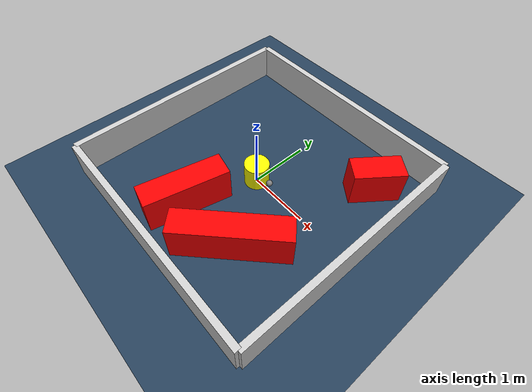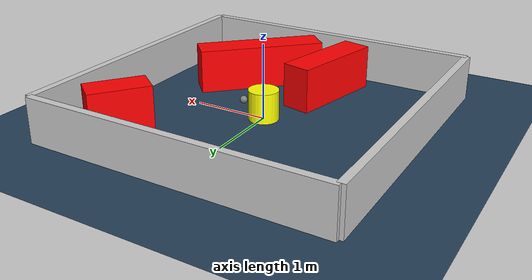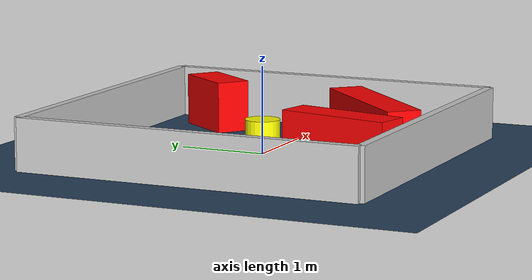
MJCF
<?xml version="1.0" ?>
<mujoco model="generated_environment">
  <option timestep="0.01" integrator="RK4" cone="elliptic"/>
  <default>
    <geom density="1"/>
  </default>
  <asset>
    <texture builtin="gradient" height="3072" rgb1="0.3 0.5 0.7" rgb2="0 0 0" type="skybox" width="512"/>
    <texture builtin="checker" height="300" mark="edge" markrgb="0.8 0.8 0.8" name="groundplane" rgb1="0.2 0.3 0.4" rgb2="0.1 0.2 0.3" type="2d" width="300"/>
    <material name="groundplane" reflectance="0.2" texrepeat="5 5" texture="groundplane" texuniform="true"/>
    <material name="robot" rgba="0.0 1.0 0.0 1"/>
  </asset>
  <worldbody>
    <light dir="0 0 -1" directional="true" pos="0 0 1.5"/>
    <geom condim="4" friction="1.0 0.005 0.001" material="groundplane" name="floor" size="0 0 0.05" type="plane"/>
    <body name="walls">
      <geom name="wall_1" condim="4" pos="-2.0 0.0 0.3" rgba="0.800000011920929 0.800000011920929 0.800000011920929 1.0" size="0.05 2.0 0.3" type="box"/>
      <geom name="wall_2" condim="4" pos="2.0 0.0 0.3" rgba="0.800000011920929 0.800000011920929 0.800000011920929 1.0" size="0.05 2.0 0.3" type="box"/>
      <geom name="wall_3" condim="4" pos="0.0 -2.0 0.3" rgba="0.800000011920929 0.800000011920929 0.800000011920929 1.0" size="2.0 0.05 0.3" type="box"/>
      <geom name="wall_4" condim="4" pos="0.0 2.0 0.3" rgba="0.800000011920929 0.800000011920929 0.800000011920929 1.0" size="2.0 0.05 0.3" type="box"/>
    </body>
    <body name="robot">
      <joint name="joint_x" type="slide" pos="0 0 0" axis="1 0 0"/>
      <joint name="joint_y" type="slide" pos="0 0 0" axis="0 1 0"/>
      <geom name="robot" type="sphere" pos="0.3 0.0 0.2" size="0.05" mass="5." friction="1.0 0.005 0.0001" condim="4" rgba="0.5 0.5 0.5 1.0"/>
      <site name="sensor_ball"/>
    </body>
    <body name="obstacle_movable_1">
      <geom name="obstacle_movable_1" condim="4" pos="0.0 0.0 0.2" euler="0 0 0.0" friction="1.0 0.005 0.001" rgba="1.0 1.0 0.0 1.0" size="0.2 0.2 0.0" type="cylinder" mass="0.1"/>
      <joint type="free"/>
    </body>
    <body name="obstacle_2_static">
      <geom name="obstacle_2_static" condim="4" pos="1.3548979869684037 1.2084174289291851 0.3" euler="0 0 52.96698874709654" friction="1.0 0.005 0.001" rgba="1 0 0 1" size="0.39751901396529543 0.2 0.3" type="box"/>
    </body>
    <body name="obstacle_3_static">
      <geom name="obstacle_3_static" condim="4" pos="0.7041357866755271 -1.0689837843787313 0.3" euler="0 0 44.2795130475986" friction="1.0 0.005 0.001" rgba="1 0 0 1" size="0.8712292897820189 0.2 0.3" type="box"/>
    </body>
    <body name="obstacle_4_static">
      <geom name="obstacle_4_static" condim="4" pos="-0.350936105680306 -1.1124972697313236 0.3" euler="0 0 77.55888645661697" friction="1.0 0.005 0.001" rgba="1 0 0 1" size="0.666161875595253 0.2 0.3" type="box"/>
    </body>
  </worldbody>
  <actuator>
    <motor name="actuator_x" joint="joint_x" gear="1" ctrlrange="-1 1"/>
    <motor name="actuator_y" joint="joint_y" gear="1" ctrlrange="-1 1"/>
  </actuator>
</mujoco>
